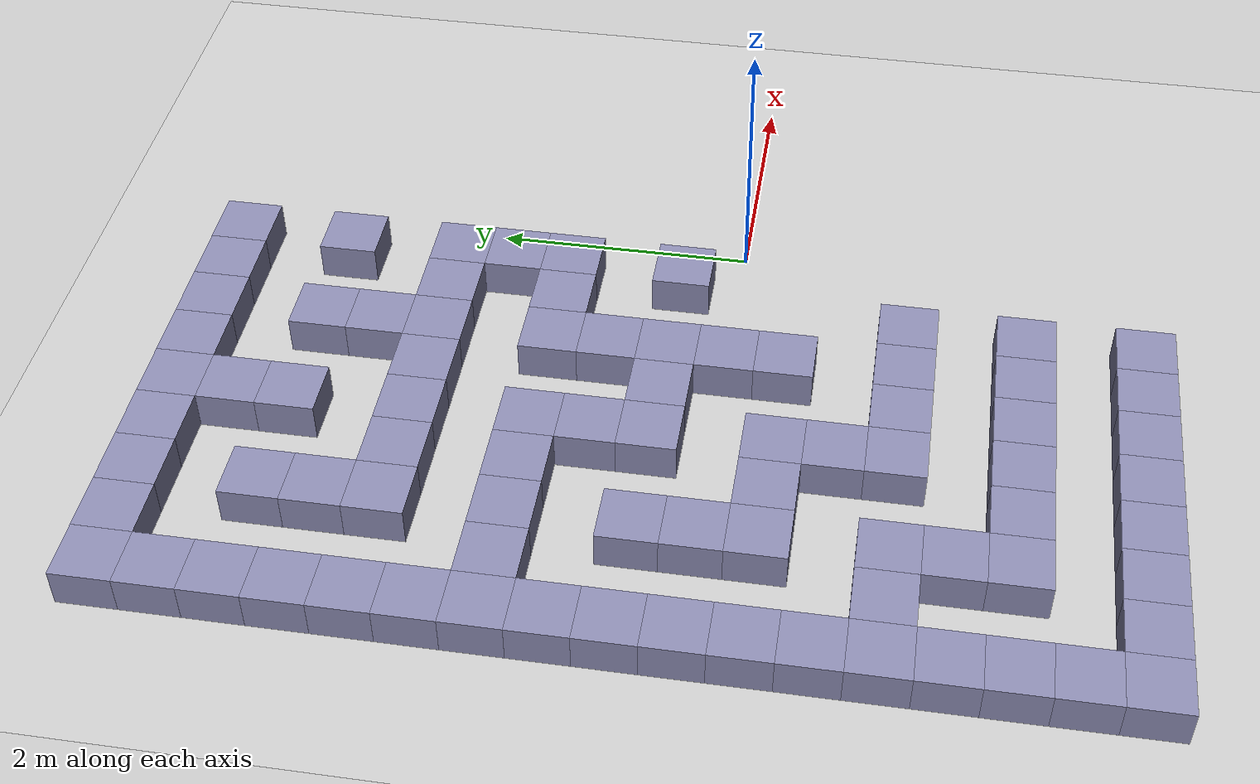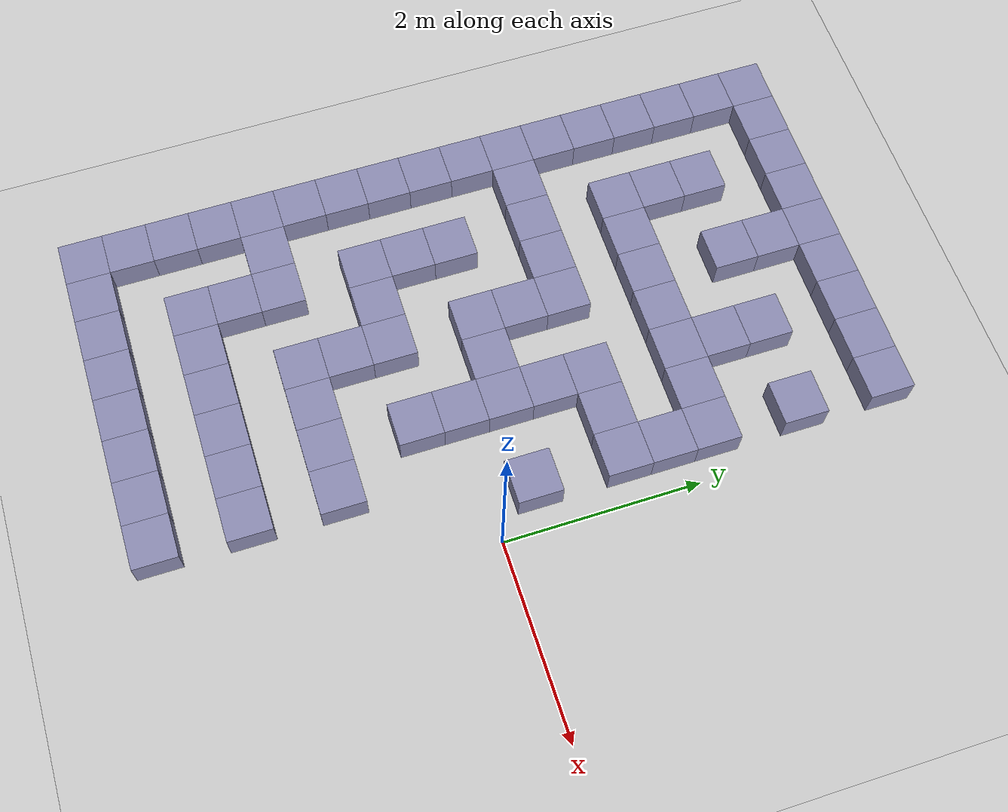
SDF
<sdf version="1.6">
 <world name="maze">
  <include><uri>model://ground_plane</uri></include>
  <include><uri>model://sun</uri></include>
  <model name="mw0">
   <static>true</static>
   <pose>-4.0500 4.0500 0.1500 0 0 0</pose>
   <link name="link">
    <collision name="c"><geometry><box><size>0.45 0.45 0.3</size></box></geometry></collision>
    <visual name="v">
     <geometry><box><size>0.45 0.45 0.3</size></box></geometry>
     <material><ambient>0.55 0.55 0.7 1</ambient></material>
    </visual>
   </link>
  </model>
  <model name="mw1">
   <static>true</static>
   <pose>-3.6000 4.0500 0.1500 0 0 0</pose>
   <link name="link">
    <collision name="c"><geometry><box><size>0.45 0.45 0.3</size></box></geometry></collision>
    <visual name="v">
     <geometry><box><size>0.45 0.45 0.3</size></box></geometry>
     <material><ambient>0.55 0.55 0.7 1</ambient></material>
    </visual>
   </link>
  </model>
  <model name="mw2">
   <static>true</static>
   <pose>-3.1500 4.0500 0.1500 0 0 0</pose>
   <link name="link">
    <collision name="c"><geometry><box><size>0.45 0.45 0.3</size></box></geometry></collision>
    <visual name="v">
     <geometry><box><size>0.45 0.45 0.3</size></box></geometry>
     <material><ambient>0.55 0.55 0.7 1</ambient></material>
    </visual>
   </link>
  </model>
  <model name="mw3">
   <static>true</static>
   <pose>-2.7000 4.0500 0.1500 0 0 0</pose>
   <link name="link">
    <collision name="c"><geometry><box><size>0.45 0.45 0.3</size></box></geometry></collision>
    <visual name="v">
     <geometry><box><size>0.45 0.45 0.3</size></box></geometry>
     <material><ambient>0.55 0.55 0.7 1</ambient></material>
    </visual>
   </link>
  </model>
  <model name="mw4">
   <static>true</static>
   <pose>-2.2500 4.0500 0.1500 0 0 0</pose>
   <link name="link">
    <collision name="c"><geometry><box><size>0.45 0.45 0.3</size></box></geometry></collision>
    <visual name="v">
     <geometry><box><size>0.45 0.45 0.3</size></box></geometry>
     <material><ambient>0.55 0.55 0.7 1</ambient></material>
    </visual>
   </link>
  </model>
  <model name="mw5">
   <static>true</static>
   <pose>-1.8000 4.0500 0.1500 0 0 0</pose>
   <link name="link">
    <collision name="c"><geometry><box><size>0.45 0.45 0.3</size></box></geometry></collision>
    <visual name="v">
     <geometry><box><size>0.45 0.45 0.3</size></box></geometry>
     <material><ambient>0.55 0.55 0.7 1</ambient></material>
    </visual>
   </link>
  </model>
  <model name="mw6">
   <static>true</static>
   <pose>-1.3500 4.0500 0.1500 0 0 0</pose>
   <link name="link">
    <collision name="c"><geometry><box><size>0.45 0.45 0.3</size></box></geometry></collision>
    <visual name="v">
     <geometry><box><size>0.45 0.45 0.3</size></box></geometry>
     <material><ambient>0.55 0.55 0.7 1</ambient></material>
    </visual>
   </link>
  </model>
  <model name="mw7">
   <static>true</static>
   <pose>-0.9000 4.0500 0.1500 0 0 0</pose>
   <link name="link">
    <collision name="c"><geometry><box><size>0.45 0.45 0.3</size></box></geometry></collision>
    <visual name="v">
     <geometry><box><size>0.45 0.45 0.3</size></box></geometry>
     <material><ambient>0.55 0.55 0.7 1</ambient></material>
    </visual>
   </link>
  </model>
  <model name="mw8">
   <static>true</static>
   <pose>-0.4500 4.0500 0.1500 0 0 0</pose>
   <link name="link">
    <collision name="c"><geometry><box><size>0.45 0.45 0.3</size></box></geometry></collision>
    <visual name="v">
     <geometry><box><size>0.45 0.45 0.3</size></box></geometry>
     <material><ambient>0.55 0.55 0.7 1</ambient></material>
    </visual>
   </link>
  </model>
  <model name="mw17">
   <static>true</static>
   <pose>-4.0500 3.6000 0.1500 0 0 0</pose>
   <link name="link">
    <collision name="c"><geometry><box><size>0.45 0.45 0.3</size></box></geometry></collision>
    <visual name="v">
     <geometry><box><size>0.45 0.45 0.3</size></box></geometry>
     <material><ambient>0.55 0.55 0.7 1</ambient></material>
    </visual>
   </link>
  </model>
  <model name="mw18">
   <static>true</static>
   <pose>-2.2500 3.6000 0.1500 0 0 0</pose>
   <link name="link">
    <collision name="c"><geometry><box><size>0.45 0.45 0.3</size></box></geometry></collision>
    <visual name="v">
     <geometry><box><size>0.45 0.45 0.3</size></box></geometry>
     <material><ambient>0.55 0.55 0.7 1</ambient></material>
    </visual>
   </link>
  </model>
  <model name="mw20">
   <static>true</static>
   <pose>-4.0500 3.1500 0.1500 0 0 0</pose>
   <link name="link">
    <collision name="c"><geometry><box><size>0.45 0.45 0.3</size></box></geometry></collision>
    <visual name="v">
     <geometry><box><size>0.45 0.45 0.3</size></box></geometry>
     <material><ambient>0.55 0.55 0.7 1</ambient></material>
    </visual>
   </link>
  </model>
  <model name="mw21">
   <static>true</static>
   <pose>-3.1500 3.1500 0.1500 0 0 0</pose>
   <link name="link">
    <collision name="c"><geometry><box><size>0.45 0.45 0.3</size></box></geometry></collision>
    <visual name="v">
     <geometry><box><size>0.45 0.45 0.3</size></box></geometry>
     <material><ambient>0.55 0.55 0.7 1</ambient></material>
    </visual>
   </link>
  </model>
  <model name="mw22">
   <static>true</static>
   <pose>-2.2500 3.1500 0.1500 0 0 0</pose>
   <link name="link">
    <collision name="c"><geometry><box><size>0.45 0.45 0.3</size></box></geometry></collision>
    <visual name="v">
     <geometry><box><size>0.45 0.45 0.3</size></box></geometry>
     <material><ambient>0.55 0.55 0.7 1</ambient></material>
    </visual>
   </link>
  </model>
  <model name="mw23">
   <static>true</static>
   <pose>-1.3500 3.1500 0.1500 0 0 0</pose>
   <link name="link">
    <collision name="c"><geometry><box><size>0.45 0.45 0.3</size></box></geometry></collision>
    <visual name="v">
     <geometry><box><size>0.45 0.45 0.3</size></box></geometry>
     <material><ambient>0.55 0.55 0.7 1</ambient></material>
    </visual>
   </link>
  </model>
  <model name="mw24">
   <static>true</static>
   <pose>-0.4500 3.1500 0.1500 0 0 0</pose>
   <link name="link">
    <collision name="c"><geometry><box><size>0.45 0.45 0.3</size></box></geometry></collision>
    <visual name="v">
     <geometry><box><size>0.45 0.45 0.3</size></box></geometry>
     <material><ambient>0.55 0.55 0.7 1</ambient></material>
    </visual>
   </link>
  </model>
  <model name="mw32">
   <static>true</static>
   <pose>-4.0500 2.7000 0.1500 0 0 0</pose>
   <link name="link">
    <collision name="c"><geometry><box><size>0.45 0.45 0.3</size></box></geometry></collision>
    <visual name="v">
     <geometry><box><size>0.45 0.45 0.3</size></box></geometry>
     <material><ambient>0.55 0.55 0.7 1</ambient></material>
    </visual>
   </link>
  </model>
  <model name="mw33">
   <static>true</static>
   <pose>-3.1500 2.7000 0.1500 0 0 0</pose>
   <link name="link">
    <collision name="c"><geometry><box><size>0.45 0.45 0.3</size></box></geometry></collision>
    <visual name="v">
     <geometry><box><size>0.45 0.45 0.3</size></box></geometry>
     <material><ambient>0.55 0.55 0.7 1</ambient></material>
    </visual>
   </link>
  </model>
  <model name="mw34">
   <static>true</static>
   <pose>-1.3500 2.7000 0.1500 0 0 0</pose>
   <link name="link">
    <collision name="c"><geometry><box><size>0.45 0.45 0.3</size></box></geometry></collision>
    <visual name="v">
     <geometry><box><size>0.45 0.45 0.3</size></box></geometry>
     <material><ambient>0.55 0.55 0.7 1</ambient></material>
    </visual>
   </link>
  </model>
  <model name="mw38">
   <static>true</static>
   <pose>-4.0500 2.2500 0.1500 0 0 0</pose>
   <link name="link">
    <collision name="c"><geometry><box><size>0.45 0.45 0.3</size></box></geometry></collision>
    <visual name="v">
     <geometry><box><size>0.45 0.45 0.3</size></box></geometry>
     <material><ambient>0.55 0.55 0.7 1</ambient></material>
    </visual>
   </link>
  </model>
  <model name="mw39">
   <static>true</static>
   <pose>-3.1500 2.2500 0.1500 0 0 0</pose>
   <link name="link">
    <collision name="c"><geometry><box><size>0.45 0.45 0.3</size></box></geometry></collision>
    <visual name="v">
     <geometry><box><size>0.45 0.45 0.3</size></box></geometry>
     <material><ambient>0.55 0.55 0.7 1</ambient></material>
    </visual>
   </link>
  </model>
  <model name="mw40">
   <static>true</static>
   <pose>-2.7000 2.2500 0.1500 0 0 0</pose>
   <link name="link">
    <collision name="c"><geometry><box><size>0.45 0.45 0.3</size></box></geometry></collision>
    <visual name="v">
     <geometry><box><size>0.45 0.45 0.3</size></box></geometry>
     <material><ambient>0.55 0.55 0.7 1</ambient></material>
    </visual>
   </link>
  </model>
  <model name="mw41">
   <static>true</static>
   <pose>-2.2500 2.2500 0.1500 0 0 0</pose>
   <link name="link">
    <collision name="c"><geometry><box><size>0.45 0.45 0.3</size></box></geometry></collision>
    <visual name="v">
     <geometry><box><size>0.45 0.45 0.3</size></box></geometry>
     <material><ambient>0.55 0.55 0.7 1</ambient></material>
    </visual>
   </link>
  </model>
  <model name="mw42">
   <static>true</static>
   <pose>-1.8000 2.2500 0.1500 0 0 0</pose>
   <link name="link">
    <collision name="c"><geometry><box><size>0.45 0.45 0.3</size></box></geometry></collision>
    <visual name="v">
     <geometry><box><size>0.45 0.45 0.3</size></box></geometry>
     <material><ambient>0.55 0.55 0.7 1</ambient></material>
    </visual>
   </link>
  </model>
  <model name="mw43">
   <static>true</static>
   <pose>-1.3500 2.2500 0.1500 0 0 0</pose>
   <link name="link">
    <collision name="c"><geometry><box><size>0.45 0.45 0.3</size></box></geometry></collision>
    <visual name="v">
     <geometry><box><size>0.45 0.45 0.3</size></box></geometry>
     <material><ambient>0.55 0.55 0.7 1</ambient></material>
    </visual>
   </link>
  </model>
  <model name="mw44">
   <static>true</static>
   <pose>-0.9000 2.2500 0.1500 0 0 0</pose>
   <link name="link">
    <collision name="c"><geometry><box><size>0.45 0.45 0.3</size></box></geometry></collision>
    <visual name="v">
     <geometry><box><size>0.45 0.45 0.3</size></box></geometry>
     <material><ambient>0.55 0.55 0.7 1</ambient></material>
    </visual>
   </link>
  </model>
  <model name="mw45">
   <static>true</static>
   <pose>-0.4500 2.2500 0.1500 0 0 0</pose>
   <link name="link">
    <collision name="c"><geometry><box><size>0.45 0.45 0.3</size></box></geometry></collision>
    <visual name="v">
     <geometry><box><size>0.45 0.45 0.3</size></box></geometry>
     <material><ambient>0.55 0.55 0.7 1</ambient></material>
    </visual>
   </link>
  </model>
  <model name="mw51">
   <static>true</static>
   <pose>-4.0500 1.8000 0.1500 0 0 0</pose>
   <link name="link">
    <collision name="c"><geometry><box><size>0.45 0.45 0.3</size></box></geometry></collision>
    <visual name="v">
     <geometry><box><size>0.45 0.45 0.3</size></box></geometry>
     <material><ambient>0.55 0.55 0.7 1</ambient></material>
    </visual>
   </link>
  </model>
  <model name="mw52">
   <static>true</static>
   <pose>-0.4500 1.8000 0.1500 0 0 0</pose>
   <link name="link">
    <collision name="c"><geometry><box><size>0.45 0.45 0.3</size></box></geometry></collision>
    <visual name="v">
     <geometry><box><size>0.45 0.45 0.3</size></box></geometry>
     <material><ambient>0.55 0.55 0.7 1</ambient></material>
    </visual>
   </link>
  </model>
  <model name="mw55">
   <static>true</static>
   <pose>-4.0500 1.3500 0.1500 0 0 0</pose>
   <link name="link">
    <collision name="c"><geometry><box><size>0.45 0.45 0.3</size></box></geometry></collision>
    <visual name="v">
     <geometry><box><size>0.45 0.45 0.3</size></box></geometry>
     <material><ambient>0.55 0.55 0.7 1</ambient></material>
    </visual>
   </link>
  </model>
  <model name="mw56">
   <static>true</static>
   <pose>-3.6000 1.3500 0.1500 0 0 0</pose>
   <link name="link">
    <collision name="c"><geometry><box><size>0.45 0.45 0.3</size></box></geometry></collision>
    <visual name="v">
     <geometry><box><size>0.45 0.45 0.3</size></box></geometry>
     <material><ambient>0.55 0.55 0.7 1</ambient></material>
    </visual>
   </link>
  </model>
  <model name="mw57">
   <static>true</static>
   <pose>-3.1500 1.3500 0.1500 0 0 0</pose>
   <link name="link">
    <collision name="c"><geometry><box><size>0.45 0.45 0.3</size></box></geometry></collision>
    <visual name="v">
     <geometry><box><size>0.45 0.45 0.3</size></box></geometry>
     <material><ambient>0.55 0.55 0.7 1</ambient></material>
    </visual>
   </link>
  </model>
  <model name="mw58">
   <static>true</static>
   <pose>-2.7000 1.3500 0.1500 0 0 0</pose>
   <link name="link">
    <collision name="c"><geometry><box><size>0.45 0.45 0.3</size></box></geometry></collision>
    <visual name="v">
     <geometry><box><size>0.45 0.45 0.3</size></box></geometry>
     <material><ambient>0.55 0.55 0.7 1</ambient></material>
    </visual>
   </link>
  </model>
  <model name="mw59">
   <static>true</static>
   <pose>-2.2500 1.3500 0.1500 0 0 0</pose>
   <link name="link">
    <collision name="c"><geometry><box><size>0.45 0.45 0.3</size></box></geometry></collision>
    <visual name="v">
     <geometry><box><size>0.45 0.45 0.3</size></box></geometry>
     <material><ambient>0.55 0.55 0.7 1</ambient></material>
    </visual>
   </link>
  </model>
  <model name="mw60">
   <static>true</static>
   <pose>-1.3500 1.3500 0.1500 0 0 0</pose>
   <link name="link">
    <collision name="c"><geometry><box><size>0.45 0.45 0.3</size></box></geometry></collision>
    <visual name="v">
     <geometry><box><size>0.45 0.45 0.3</size></box></geometry>
     <material><ambient>0.55 0.55 0.7 1</ambient></material>
    </visual>
   </link>
  </model>
  <model name="mw61">
   <static>true</static>
   <pose>-0.9000 1.3500 0.1500 0 0 0</pose>
   <link name="link">
    <collision name="c"><geometry><box><size>0.45 0.45 0.3</size></box></geometry></collision>
    <visual name="v">
     <geometry><box><size>0.45 0.45 0.3</size></box></geometry>
     <material><ambient>0.55 0.55 0.7 1</ambient></material>
    </visual>
   </link>
  </model>
  <model name="mw62">
   <static>true</static>
   <pose>-0.4500 1.3500 0.1500 0 0 0</pose>
   <link name="link">
    <collision name="c"><geometry><box><size>0.45 0.45 0.3</size></box></geometry></collision>
    <visual name="v">
     <geometry><box><size>0.45 0.45 0.3</size></box></geometry>
     <material><ambient>0.55 0.55 0.7 1</ambient></material>
    </visual>
   </link>
  </model>
  <model name="mw70">
   <static>true</static>
   <pose>-4.0500 0.9000 0.1500 0 0 0</pose>
   <link name="link">
    <collision name="c"><geometry><box><size>0.45 0.45 0.3</size></box></geometry></collision>
    <visual name="v">
     <geometry><box><size>0.45 0.45 0.3</size></box></geometry>
     <material><ambient>0.55 0.55 0.7 1</ambient></material>
    </visual>
   </link>
  </model>
  <model name="mw71">
   <static>true</static>
   <pose>-2.2500 0.9000 0.1500 0 0 0</pose>
   <link name="link">
    <collision name="c"><geometry><box><size>0.45 0.45 0.3</size></box></geometry></collision>
    <visual name="v">
     <geometry><box><size>0.45 0.45 0.3</size></box></geometry>
     <material><ambient>0.55 0.55 0.7 1</ambient></material>
    </visual>
   </link>
  </model>
  <model name="mw72">
   <static>true</static>
   <pose>-1.3500 0.9000 0.1500 0 0 0</pose>
   <link name="link">
    <collision name="c"><geometry><box><size>0.45 0.45 0.3</size></box></geometry></collision>
    <visual name="v">
     <geometry><box><size>0.45 0.45 0.3</size></box></geometry>
     <material><ambient>0.55 0.55 0.7 1</ambient></material>
    </visual>
   </link>
  </model>
  <model name="mw75">
   <static>true</static>
   <pose>-4.0500 0.4500 0.1500 0 0 0</pose>
   <link name="link">
    <collision name="c"><geometry><box><size>0.45 0.45 0.3</size></box></geometry></collision>
    <visual name="v">
     <geometry><box><size>0.45 0.45 0.3</size></box></geometry>
     <material><ambient>0.55 0.55 0.7 1</ambient></material>
    </visual>
   </link>
  </model>
  <model name="mw76">
   <static>true</static>
   <pose>-3.1500 0.4500 0.1500 0 0 0</pose>
   <link name="link">
    <collision name="c"><geometry><box><size>0.45 0.45 0.3</size></box></geometry></collision>
    <visual name="v">
     <geometry><box><size>0.45 0.45 0.3</size></box></geometry>
     <material><ambient>0.55 0.55 0.7 1</ambient></material>
    </visual>
   </link>
  </model>
  <model name="mw77">
   <static>true</static>
   <pose>-2.2500 0.4500 0.1500 0 0 0</pose>
   <link name="link">
    <collision name="c"><geometry><box><size>0.45 0.45 0.3</size></box></geometry></collision>
    <visual name="v">
     <geometry><box><size>0.45 0.45 0.3</size></box></geometry>
     <material><ambient>0.55 0.55 0.7 1</ambient></material>
    </visual>
   </link>
  </model>
  <model name="mw78">
   <static>true</static>
   <pose>-1.8000 0.4500 0.1500 0 0 0</pose>
   <link name="link">
    <collision name="c"><geometry><box><size>0.45 0.45 0.3</size></box></geometry></collision>
    <visual name="v">
     <geometry><box><size>0.45 0.45 0.3</size></box></geometry>
     <material><ambient>0.55 0.55 0.7 1</ambient></material>
    </visual>
   </link>
  </model>
  <model name="mw79">
   <static>true</static>
   <pose>-1.3500 0.4500 0.1500 0 0 0</pose>
   <link name="link">
    <collision name="c"><geometry><box><size>0.45 0.45 0.3</size></box></geometry></collision>
    <visual name="v">
     <geometry><box><size>0.45 0.45 0.3</size></box></geometry>
     <material><ambient>0.55 0.55 0.7 1</ambient></material>
    </visual>
   </link>
  </model>
  <model name="mw80">
   <static>true</static>
   <pose>-0.4500 0.4500 0.1500 0 0 0</pose>
   <link name="link">
    <collision name="c"><geometry><box><size>0.45 0.45 0.3</size></box></geometry></collision>
    <visual name="v">
     <geometry><box><size>0.45 0.45 0.3</size></box></geometry>
     <material><ambient>0.55 0.55 0.7 1</ambient></material>
    </visual>
   </link>
  </model>
  <model name="mw87">
   <static>true</static>
   <pose>-4.0500 0.0000 0.1500 0 0 0</pose>
   <link name="link">
    <collision name="c"><geometry><box><size>0.45 0.45 0.3</size></box></geometry></collision>
    <visual name="v">
     <geometry><box><size>0.45 0.45 0.3</size></box></geometry>
     <material><ambient>0.55 0.55 0.7 1</ambient></material>
    </visual>
   </link>
  </model>
  <model name="mw88">
   <static>true</static>
   <pose>-3.1500 0.0000 0.1500 0 0 0</pose>
   <link name="link">
    <collision name="c"><geometry><box><size>0.45 0.45 0.3</size></box></geometry></collision>
    <visual name="v">
     <geometry><box><size>0.45 0.45 0.3</size></box></geometry>
     <material><ambient>0.55 0.55 0.7 1</ambient></material>
    </visual>
   </link>
  </model>
  <model name="mw89">
   <static>true</static>
   <pose>-1.3500 0.0000 0.1500 0 0 0</pose>
   <link name="link">
    <collision name="c"><geometry><box><size>0.45 0.45 0.3</size></box></geometry></collision>
    <visual name="v">
     <geometry><box><size>0.45 0.45 0.3</size></box></geometry>
     <material><ambient>0.55 0.55 0.7 1</ambient></material>
    </visual>
   </link>
  </model>
  <model name="mw93">
   <static>true</static>
   <pose>-4.0500 -0.4500 0.1500 0 0 0</pose>
   <link name="link">
    <collision name="c"><geometry><box><size>0.45 0.45 0.3</size></box></geometry></collision>
    <visual name="v">
     <geometry><box><size>0.45 0.45 0.3</size></box></geometry>
     <material><ambient>0.55 0.55 0.7 1</ambient></material>
    </visual>
   </link>
  </model>
  <model name="mw94">
   <static>true</static>
   <pose>-3.1500 -0.4500 0.1500 0 0 0</pose>
   <link name="link">
    <collision name="c"><geometry><box><size>0.45 0.45 0.3</size></box></geometry></collision>
    <visual name="v">
     <geometry><box><size>0.45 0.45 0.3</size></box></geometry>
     <material><ambient>0.55 0.55 0.7 1</ambient></material>
    </visual>
   </link>
  </model>
  <model name="mw95">
   <static>true</static>
   <pose>-2.7000 -0.4500 0.1500 0 0 0</pose>
   <link name="link">
    <collision name="c"><geometry><box><size>0.45 0.45 0.3</size></box></geometry></collision>
    <visual name="v">
     <geometry><box><size>0.45 0.45 0.3</size></box></geometry>
     <material><ambient>0.55 0.55 0.7 1</ambient></material>
    </visual>
   </link>
  </model>
  <model name="mw96">
   <static>true</static>
   <pose>-2.2500 -0.4500 0.1500 0 0 0</pose>
   <link name="link">
    <collision name="c"><geometry><box><size>0.45 0.45 0.3</size></box></geometry></collision>
    <visual name="v">
     <geometry><box><size>0.45 0.45 0.3</size></box></geometry>
     <material><ambient>0.55 0.55 0.7 1</ambient></material>
    </visual>
   </link>
  </model>
  <model name="mw97">
   <static>true</static>
   <pose>-1.3500 -0.4500 0.1500 0 0 0</pose>
   <link name="link">
    <collision name="c"><geometry><box><size>0.45 0.45 0.3</size></box></geometry></collision>
    <visual name="v">
     <geometry><box><size>0.45 0.45 0.3</size></box></geometry>
     <material><ambient>0.55 0.55 0.7 1</ambient></material>
    </visual>
   </link>
  </model>
  <model name="mw106">
   <static>true</static>
   <pose>-4.0500 -0.9000 0.1500 0 0 0</pose>
   <link name="link">
    <collision name="c"><geometry><box><size>0.45 0.45 0.3</size></box></geometry></collision>
    <visual name="v">
     <geometry><box><size>0.45 0.45 0.3</size></box></geometry>
     <material><ambient>0.55 0.55 0.7 1</ambient></material>
    </visual>
   </link>
  </model>
  <model name="mw107">
   <static>true</static>
   <pose>-2.2500 -0.9000 0.1500 0 0 0</pose>
   <link name="link">
    <collision name="c"><geometry><box><size>0.45 0.45 0.3</size></box></geometry></collision>
    <visual name="v">
     <geometry><box><size>0.45 0.45 0.3</size></box></geometry>
     <material><ambient>0.55 0.55 0.7 1</ambient></material>
    </visual>
   </link>
  </model>
  <model name="mw111">
   <static>true</static>
   <pose>-4.0500 -1.3500 0.1500 0 0 0</pose>
   <link name="link">
    <collision name="c"><geometry><box><size>0.45 0.45 0.3</size></box></geometry></collision>
    <visual name="v">
     <geometry><box><size>0.45 0.45 0.3</size></box></geometry>
     <material><ambient>0.55 0.55 0.7 1</ambient></material>
    </visual>
   </link>
  </model>
  <model name="mw112">
   <static>true</static>
   <pose>-3.6000 -1.3500 0.1500 0 0 0</pose>
   <link name="link">
    <collision name="c"><geometry><box><size>0.45 0.45 0.3</size></box></geometry></collision>
    <visual name="v">
     <geometry><box><size>0.45 0.45 0.3</size></box></geometry>
     <material><ambient>0.55 0.55 0.7 1</ambient></material>
    </visual>
   </link>
  </model>
  <model name="mw113">
   <static>true</static>
   <pose>-3.1500 -1.3500 0.1500 0 0 0</pose>
   <link name="link">
    <collision name="c"><geometry><box><size>0.45 0.45 0.3</size></box></geometry></collision>
    <visual name="v">
     <geometry><box><size>0.45 0.45 0.3</size></box></geometry>
     <material><ambient>0.55 0.55 0.7 1</ambient></material>
    </visual>
   </link>
  </model>
  <model name="mw114">
   <static>true</static>
   <pose>-2.2500 -1.3500 0.1500 0 0 0</pose>
   <link name="link">
    <collision name="c"><geometry><box><size>0.45 0.45 0.3</size></box></geometry></collision>
    <visual name="v">
     <geometry><box><size>0.45 0.45 0.3</size></box></geometry>
     <material><ambient>0.55 0.55 0.7 1</ambient></material>
    </visual>
   </link>
  </model>
  <model name="mw115">
   <static>true</static>
   <pose>-1.8000 -1.3500 0.1500 0 0 0</pose>
   <link name="link">
    <collision name="c"><geometry><box><size>0.45 0.45 0.3</size></box></geometry></collision>
    <visual name="v">
     <geometry><box><size>0.45 0.45 0.3</size></box></geometry>
     <material><ambient>0.55 0.55 0.7 1</ambient></material>
    </visual>
   </link>
  </model>
  <model name="mw116">
   <static>true</static>
   <pose>-1.3500 -1.3500 0.1500 0 0 0</pose>
   <link name="link">
    <collision name="c"><geometry><box><size>0.45 0.45 0.3</size></box></geometry></collision>
    <visual name="v">
     <geometry><box><size>0.45 0.45 0.3</size></box></geometry>
     <material><ambient>0.55 0.55 0.7 1</ambient></material>
    </visual>
   </link>
  </model>
  <model name="mw117">
   <static>true</static>
   <pose>-0.9000 -1.3500 0.1500 0 0 0</pose>
   <link name="link">
    <collision name="c"><geometry><box><size>0.45 0.45 0.3</size></box></geometry></collision>
    <visual name="v">
     <geometry><box><size>0.45 0.45 0.3</size></box></geometry>
     <material><ambient>0.55 0.55 0.7 1</ambient></material>
    </visual>
   </link>
  </model>
  <model name="mw124">
   <static>true</static>
   <pose>-4.0500 -1.8000 0.1500 0 0 0</pose>
   <link name="link">
    <collision name="c"><geometry><box><size>0.45 0.45 0.3</size></box></geometry></collision>
    <visual name="v">
     <geometry><box><size>0.45 0.45 0.3</size></box></geometry>
     <material><ambient>0.55 0.55 0.7 1</ambient></material>
    </visual>
   </link>
  </model>
  <model name="mw125">
   <static>true</static>
   <pose>-3.1500 -1.8000 0.1500 0 0 0</pose>
   <link name="link">
    <collision name="c"><geometry><box><size>0.45 0.45 0.3</size></box></geometry></collision>
    <visual name="v">
     <geometry><box><size>0.45 0.45 0.3</size></box></geometry>
     <material><ambient>0.55 0.55 0.7 1</ambient></material>
    </visual>
   </link>
  </model>
  <model name="mw129">
   <static>true</static>
   <pose>-4.0500 -2.2500 0.1500 0 0 0</pose>
   <link name="link">
    <collision name="c"><geometry><box><size>0.45 0.45 0.3</size></box></geometry></collision>
    <visual name="v">
     <geometry><box><size>0.45 0.45 0.3</size></box></geometry>
     <material><ambient>0.55 0.55 0.7 1</ambient></material>
    </visual>
   </link>
  </model>
  <model name="mw130">
   <static>true</static>
   <pose>-3.1500 -2.2500 0.1500 0 0 0</pose>
   <link name="link">
    <collision name="c"><geometry><box><size>0.45 0.45 0.3</size></box></geometry></collision>
    <visual name="v">
     <geometry><box><size>0.45 0.45 0.3</size></box></geometry>
     <material><ambient>0.55 0.55 0.7 1</ambient></material>
    </visual>
   </link>
  </model>
  <model name="mw131">
   <static>true</static>
   <pose>-2.7000 -2.2500 0.1500 0 0 0</pose>
   <link name="link">
    <collision name="c"><geometry><box><size>0.45 0.45 0.3</size></box></geometry></collision>
    <visual name="v">
     <geometry><box><size>0.45 0.45 0.3</size></box></geometry>
     <material><ambient>0.55 0.55 0.7 1</ambient></material>
    </visual>
   </link>
  </model>
  <model name="mw132">
   <static>true</static>
   <pose>-2.2500 -2.2500 0.1500 0 0 0</pose>
   <link name="link">
    <collision name="c"><geometry><box><size>0.45 0.45 0.3</size></box></geometry></collision>
    <visual name="v">
     <geometry><box><size>0.45 0.45 0.3</size></box></geometry>
     <material><ambient>0.55 0.55 0.7 1</ambient></material>
    </visual>
   </link>
  </model>
  <model name="mw133">
   <static>true</static>
   <pose>-1.8000 -2.2500 0.1500 0 0 0</pose>
   <link name="link">
    <collision name="c"><geometry><box><size>0.45 0.45 0.3</size></box></geometry></collision>
    <visual name="v">
     <geometry><box><size>0.45 0.45 0.3</size></box></geometry>
     <material><ambient>0.55 0.55 0.7 1</ambient></material>
    </visual>
   </link>
  </model>
  <model name="mw134">
   <static>true</static>
   <pose>-1.3500 -2.2500 0.1500 0 0 0</pose>
   <link name="link">
    <collision name="c"><geometry><box><size>0.45 0.45 0.3</size></box></geometry></collision>
    <visual name="v">
     <geometry><box><size>0.45 0.45 0.3</size></box></geometry>
     <material><ambient>0.55 0.55 0.7 1</ambient></material>
    </visual>
   </link>
  </model>
  <model name="mw135">
   <static>true</static>
   <pose>-0.9000 -2.2500 0.1500 0 0 0</pose>
   <link name="link">
    <collision name="c"><geometry><box><size>0.45 0.45 0.3</size></box></geometry></collision>
    <visual name="v">
     <geometry><box><size>0.45 0.45 0.3</size></box></geometry>
     <material><ambient>0.55 0.55 0.7 1</ambient></material>
    </visual>
   </link>
  </model>
  <model name="mw143">
   <static>true</static>
   <pose>-4.0500 -2.7000 0.1500 0 0 0</pose>
   <link name="link">
    <collision name="c"><geometry><box><size>0.45 0.45 0.3</size></box></geometry></collision>
    <visual name="v">
     <geometry><box><size>0.45 0.45 0.3</size></box></geometry>
     <material><ambient>0.55 0.55 0.7 1</ambient></material>
    </visual>
   </link>
  </model>
  <model name="mw145">
   <static>true</static>
   <pose>-4.0500 -3.1500 0.1500 0 0 0</pose>
   <link name="link">
    <collision name="c"><geometry><box><size>0.45 0.45 0.3</size></box></geometry></collision>
    <visual name="v">
     <geometry><box><size>0.45 0.45 0.3</size></box></geometry>
     <material><ambient>0.55 0.55 0.7 1</ambient></material>
    </visual>
   </link>
  </model>
  <model name="mw146">
   <static>true</static>
   <pose>-3.6000 -3.1500 0.1500 0 0 0</pose>
   <link name="link">
    <collision name="c"><geometry><box><size>0.45 0.45 0.3</size></box></geometry></collision>
    <visual name="v">
     <geometry><box><size>0.45 0.45 0.3</size></box></geometry>
     <material><ambient>0.55 0.55 0.7 1</ambient></material>
    </visual>
   </link>
  </model>
  <model name="mw147">
   <static>true</static>
   <pose>-3.1500 -3.1500 0.1500 0 0 0</pose>
   <link name="link">
    <collision name="c"><geometry><box><size>0.45 0.45 0.3</size></box></geometry></collision>
    <visual name="v">
     <geometry><box><size>0.45 0.45 0.3</size></box></geometry>
     <material><ambient>0.55 0.55 0.7 1</ambient></material>
    </visual>
   </link>
  </model>
  <model name="mw148">
   <static>true</static>
   <pose>-2.7000 -3.1500 0.1500 0 0 0</pose>
   <link name="link">
    <collision name="c"><geometry><box><size>0.45 0.45 0.3</size></box></geometry></collision>
    <visual name="v">
     <geometry><box><size>0.45 0.45 0.3</size></box></geometry>
     <material><ambient>0.55 0.55 0.7 1</ambient></material>
    </visual>
   </link>
  </model>
  <model name="mw149">
   <static>true</static>
   <pose>-2.2500 -3.1500 0.1500 0 0 0</pose>
   <link name="link">
    <collision name="c"><geometry><box><size>0.45 0.45 0.3</size></box></geometry></collision>
    <visual name="v">
     <geometry><box><size>0.45 0.45 0.3</size></box></geometry>
     <material><ambient>0.55 0.55 0.7 1</ambient></material>
    </visual>
   </link>
  </model>
  <model name="mw150">
   <static>true</static>
   <pose>-1.8000 -3.1500 0.1500 0 0 0</pose>
   <link name="link">
    <collision name="c"><geometry><box><size>0.45 0.45 0.3</size></box></geometry></collision>
    <visual name="v">
     <geometry><box><size>0.45 0.45 0.3</size></box></geometry>
     <material><ambient>0.55 0.55 0.7 1</ambient></material>
    </visual>
   </link>
  </model>
  <model name="mw151">
   <static>true</static>
   <pose>-1.3500 -3.1500 0.1500 0 0 0</pose>
   <link name="link">
    <collision name="c"><geometry><box><size>0.45 0.45 0.3</size></box></geometry></collision>
    <visual name="v">
     <geometry><box><size>0.45 0.45 0.3</size></box></geometry>
     <material><ambient>0.55 0.55 0.7 1</ambient></material>
    </visual>
   </link>
  </model>
  <model name="mw152">
   <static>true</static>
   <pose>-0.9000 -3.1500 0.1500 0 0 0</pose>
   <link name="link">
    <collision name="c"><geometry><box><size>0.45 0.45 0.3</size></box></geometry></collision>
    <visual name="v">
     <geometry><box><size>0.45 0.45 0.3</size></box></geometry>
     <material><ambient>0.55 0.55 0.7 1</ambient></material>
    </visual>
   </link>
  </model>
 </world>
</sdf>
